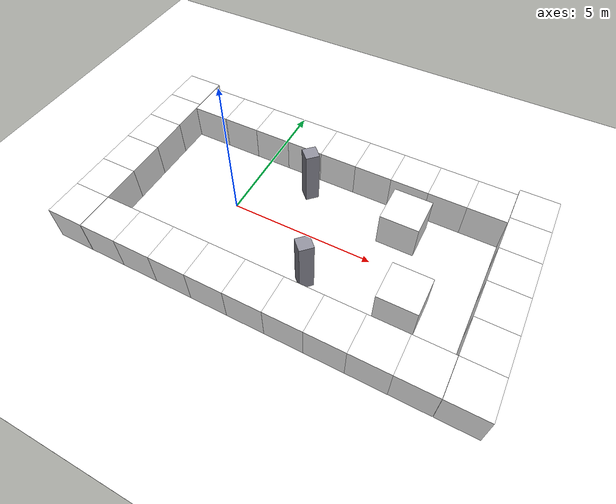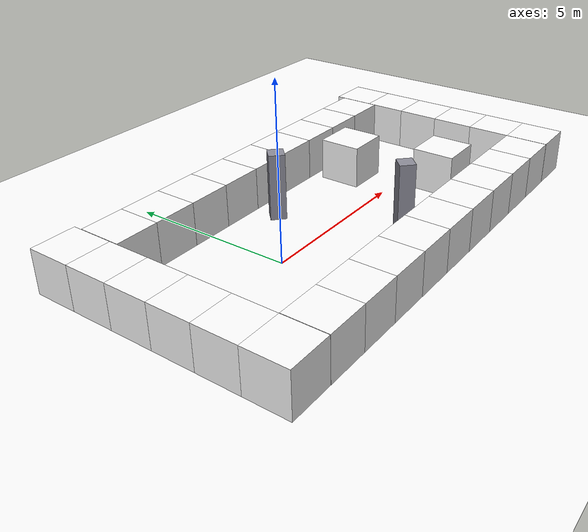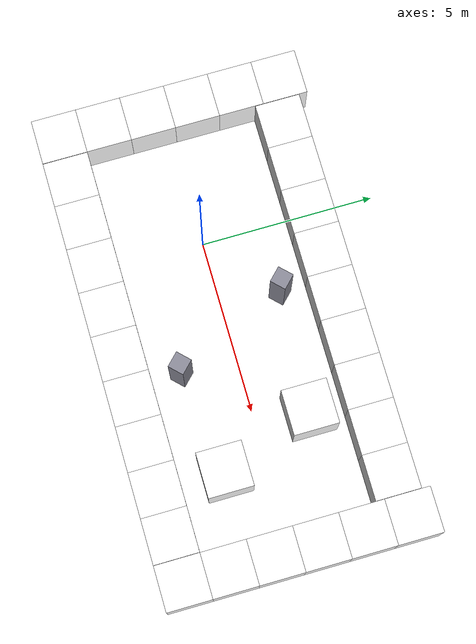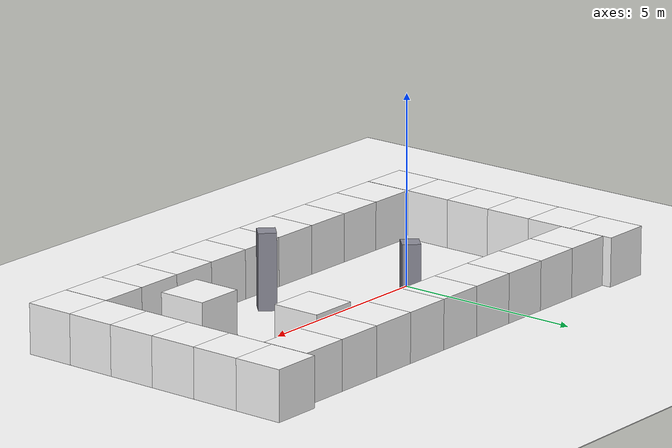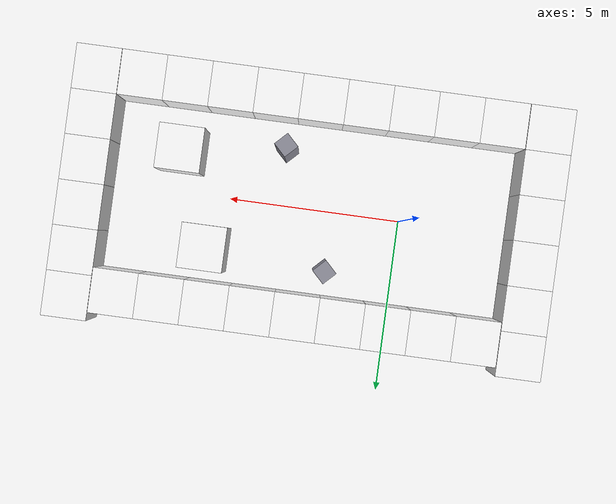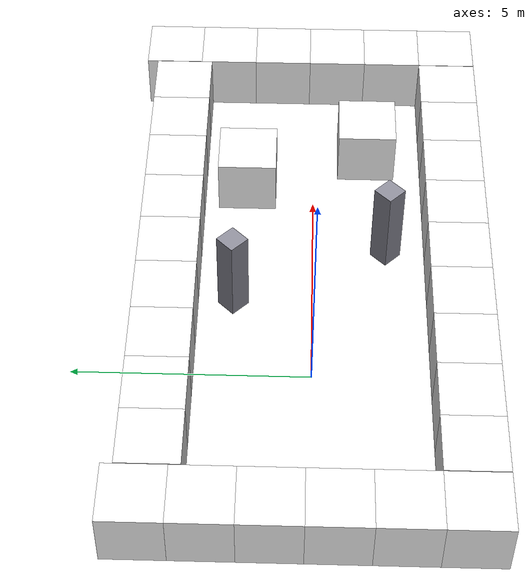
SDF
<?xml version="1.0" ?>
<sdf version="1.9">
  <world name="yard">
    <physics name="1ms" type="ignored">
      <max_step_size>0.001</max_step_size>
      <real_time_factor>1</real_time_factor>
    </physics>
    <plugin filename="gz-sim-physics-system" name="gz::sim::systems::Physics"/>
    <plugin filename="gz-sim-user-commands-system" name="gz::sim::systems::UserCommands"/>
    <plugin filename="gz-sim-scene-broadcaster-system" name="gz::sim::systems::SceneBroadcaster"/>
    <plugin filename="gz-sim-imu-system" name="gz::sim::systems::Imu"/>
    <plugin filename="gz-sim-sensors-system" name="gz::sim::systems::Sensors">
      <render_engine>ogre2</render_engine>
    </plugin>

    <scene>
      <ambient>1 1 1 1</ambient>
      <background>0.3 0.7 0.9 1</background>
      <shadows>0</shadows>
      <grid>1</grid>
    </scene>

    <light name="sun" type="directional">
      <pose>0 0 10 0 0 0</pose>
      <cast_shadows>false</cast_shadows>
      <diffuse>1 1 1 1</diffuse>
      <specular>0.1 0.1 0.1 1</specular>
      <direction>-0.3 0.3 -1</direction>
    </light>

    <!-- open-top sky would hand the stereo pair raw sky (invalid disparity,
         NaN past perception's < 0.1 gate -> dead VIO optimizer); same
         visual-only ceiling as the factory scene -->
    <model name="sky_shell">
      <static>1</static>
      <link name="link">
        <visual name="ceiling">
          <pose>0 0 12 0 0 0</pose>
          <geometry><plane><normal>0 0 -1</normal><size>220 160</size></plane></geometry>
          <material>
            <ambient>0.6 0.6 0.6 1</ambient>
            <diffuse>0.6 0.6 0.6 1</diffuse>
          </material>
        </visual>
      </link>
    </model>

    <model name="ground_plane">
      <static>1</static>
      <pose>0 0 0.002 0 0 0</pose>
      <link name="link">
        <collision name="collision">
          <geometry><plane><normal>0 0 1</normal><size>100 100</size></plane></geometry>
          <surface>
            <friction><ode/></friction>
            <bounce/>
            <contact/>
          </surface>
        </collision>
        <!-- Visual floor: depot FLOOR albedo stretched over 40m so stereo
             SLAM finds texture on an otherwise empty ground (same trick as
             robots/lekiwi/lekiwi.sdf). -->
        <visual name="floor_visual">
          <pose>0 0 -0.011 0 0 0</pose>
          <geometry><box><size>40 40 0.02</size></box></geometry>
          <material>
            <diffuse>1 1 1 1</diffuse>
            <specular>0.05 0.05 0.05 1</specular>
            <pbr>
              <metal>
                <albedo_map>file:///tinynav/tool/simulator/gazebo_scene/models/textures/FLOOR_Albedo.png</albedo_map>
                <roughness>0.95</roughness>
                <metalness>0.0</metalness>
              </metal>
            </pbr>
          </material>
        </visual>
      </link>
    </model>
  <model name="anchor_wall_south">
    <static>1</static>
    <link name="c00">
      <pose>-2.500 -3.100 0.644 0 0 0.0000</pose>
      <collision name="col"><geometry><box><size>1.288 1.288 1.288</size></box></geometry></collision>
      <visual name="vis">
        <geometry><box><size>1.288 1.288 1.288</size></box></geometry>
        <material><diffuse>1 1 1 1</diffuse>
          <pbr><metal>
            <albedo_map>file:///tinynav/tool/simulator/gazebo_scene/models/textures/crate_0.png</albedo_map>
            <roughness>0.95</roughness><metalness>0.0</metalness>
          </metal></pbr>
        </material>
      </visual>
    </link>
    <link name="c01">
      <pose>-1.212 -3.100 0.644 0 0 0.0000</pose>
      <collision name="col"><geometry><box><size>1.288 1.288 1.288</size></box></geometry></collision>
      <visual name="vis">
        <geometry><box><size>1.288 1.288 1.288</size></box></geometry>
        <material><diffuse>1 1 1 1</diffuse>
          <pbr><metal>
            <albedo_map>file:///tinynav/tool/simulator/gazebo_scene/models/textures/crate_1.png</albedo_map>
            <roughness>0.95</roughness><metalness>0.0</metalness>
          </metal></pbr>
        </material>
      </visual>
    </link>
    <link name="c02">
      <pose>0.076 -3.100 0.644 0 0 0.0000</pose>
      <collision name="col"><geometry><box><size>1.288 1.288 1.288</size></box></geometry></collision>
      <visual name="vis">
        <geometry><box><size>1.288 1.288 1.288</size></box></geometry>
        <material><diffuse>1 1 1 1</diffuse>
          <pbr><metal>
            <albedo_map>file:///tinynav/tool/simulator/gazebo_scene/models/textures/crate_2.png</albedo_map>
            <roughness>0.95</roughness><metalness>0.0</metalness>
          </metal></pbr>
        </material>
      </visual>
    </link>
    <link name="c03">
      <pose>1.364 -3.100 0.644 0 0 0.0000</pose>
      <collision name="col"><geometry><box><size>1.288 1.288 1.288</size></box></geometry></collision>
      <visual name="vis">
        <geometry><box><size>1.288 1.288 1.288</size></box></geometry>
        <material><diffuse>1 1 1 1</diffuse>
          <pbr><metal>
            <albedo_map>file:///tinynav/tool/simulator/gazebo_scene/models/textures/crate_3.png</albedo_map>
            <roughness>0.95</roughness><metalness>0.0</metalness>
          </metal></pbr>
        </material>
      </visual>
    </link>
    <link name="c04">
      <pose>2.652 -3.100 0.644 0 0 0.0000</pose>
      <collision name="col"><geometry><box><size>1.288 1.288 1.288</size></box></geometry></collision>
      <visual name="vis">
        <geometry><box><size>1.288 1.288 1.288</size></box></geometry>
        <material><diffuse>1 1 1 1</diffuse>
          <pbr><metal>
            <albedo_map>file:///tinynav/tool/simulator/gazebo_scene/models/textures/crate_4.png</albedo_map>
            <roughness>0.95</roughness><metalness>0.0</metalness>
          </metal></pbr>
        </material>
      </visual>
    </link>
    <link name="c05">
      <pose>3.940 -3.100 0.644 0 0 0.0000</pose>
      <collision name="col"><geometry><box><size>1.288 1.288 1.288</size></box></geometry></collision>
      <visual name="vis">
        <geometry><box><size>1.288 1.288 1.288</size></box></geometry>
        <material><diffuse>1 1 1 1</diffuse>
          <pbr><metal>
            <albedo_map>file:///tinynav/tool/simulator/gazebo_scene/models/textures/crate_5.png</albedo_map>
            <roughness>0.95</roughness><metalness>0.0</metalness>
          </metal></pbr>
        </material>
      </visual>
    </link>
    <link name="c06">
      <pose>5.228 -3.100 0.644 0 0 0.0000</pose>
      <collision name="col"><geometry><box><size>1.288 1.288 1.288</size></box></geometry></collision>
      <visual name="vis">
        <geometry><box><size>1.288 1.288 1.288</size></box></geometry>
        <material><diffuse>1 1 1 1</diffuse>
          <pbr><metal>
            <albedo_map>file:///tinynav/tool/simulator/gazebo_scene/models/textures/crate_6.png</albedo_map>
            <roughness>0.95</roughness><metalness>0.0</metalness>
          </metal></pbr>
        </material>
      </visual>
    </link>
    <link name="c07">
      <pose>6.516 -3.100 0.644 0 0 0.0000</pose>
      <collision name="col"><geometry><box><size>1.288 1.288 1.288</size></box></geometry></collision>
      <visual name="vis">
        <geometry><box><size>1.288 1.288 1.288</size></box></geometry>
        <material><diffuse>1 1 1 1</diffuse>
          <pbr><metal>
            <albedo_map>file:///tinynav/tool/simulator/gazebo_scene/models/textures/crate_7.png</albedo_map>
            <roughness>0.95</roughness><metalness>0.0</metalness>
          </metal></pbr>
        </material>
      </visual>
    </link>
    <link name="c08">
      <pose>7.804 -3.100 0.644 0 0 0.0000</pose>
      <collision name="col"><geometry><box><size>1.288 1.288 1.288</size></box></geometry></collision>
      <visual name="vis">
        <geometry><box><size>1.288 1.288 1.288</size></box></geometry>
        <material><diffuse>1 1 1 1</diffuse>
          <pbr><metal>
            <albedo_map>file:///tinynav/tool/simulator/gazebo_scene/models/textures/crate_0.png</albedo_map>
            <roughness>0.95</roughness><metalness>0.0</metalness>
          </metal></pbr>
        </material>
      </visual>
    </link>
  </model>
  <model name="anchor_wall_north">
    <static>1</static>
    <link name="c00">
      <pose>-2.500 3.100 0.644 0 0 0.0000</pose>
      <collision name="col"><geometry><box><size>1.288 1.288 1.288</size></box></geometry></collision>
      <visual name="vis">
        <geometry><box><size>1.288 1.288 1.288</size></box></geometry>
        <material><diffuse>1 1 1 1</diffuse>
          <pbr><metal>
            <albedo_map>file:///tinynav/tool/simulator/gazebo_scene/models/textures/crate_3.png</albedo_map>
            <roughness>0.95</roughness><metalness>0.0</metalness>
          </metal></pbr>
        </material>
      </visual>
    </link>
    <link name="c01">
      <pose>-1.212 3.100 0.644 0 0 0.0000</pose>
      <collision name="col"><geometry><box><size>1.288 1.288 1.288</size></box></geometry></collision>
      <visual name="vis">
        <geometry><box><size>1.288 1.288 1.288</size></box></geometry>
        <material><diffuse>1 1 1 1</diffuse>
          <pbr><metal>
            <albedo_map>file:///tinynav/tool/simulator/gazebo_scene/models/textures/crate_4.png</albedo_map>
            <roughness>0.95</roughness><metalness>0.0</metalness>
          </metal></pbr>
        </material>
      </visual>
    </link>
    <link name="c02">
      <pose>0.076 3.100 0.644 0 0 0.0000</pose>
      <collision name="col"><geometry><box><size>1.288 1.288 1.288</size></box></geometry></collision>
      <visual name="vis">
        <geometry><box><size>1.288 1.288 1.288</size></box></geometry>
        <material><diffuse>1 1 1 1</diffuse>
          <pbr><metal>
            <albedo_map>file:///tinynav/tool/simulator/gazebo_scene/models/textures/crate_5.png</albedo_map>
            <roughness>0.95</roughness><metalness>0.0</metalness>
          </metal></pbr>
        </material>
      </visual>
    </link>
    <link name="c03">
      <pose>1.364 3.100 0.644 0 0 0.0000</pose>
      <collision name="col"><geometry><box><size>1.288 1.288 1.288</size></box></geometry></collision>
      <visual name="vis">
        <geometry><box><size>1.288 1.288 1.288</size></box></geometry>
        <material><diffuse>1 1 1 1</diffuse>
          <pbr><metal>
            <albedo_map>file:///tinynav/tool/simulator/gazebo_scene/models/textures/crate_6.png</albedo_map>
            <roughness>0.95</roughness><metalness>0.0</metalness>
          </metal></pbr>
        </material>
      </visual>
    </link>
    <link name="c04">
      <pose>2.652 3.100 0.644 0 0 0.0000</pose>
      <collision name="col"><geometry><box><size>1.288 1.288 1.288</size></box></geometry></collision>
      <visual name="vis">
        <geometry><box><size>1.288 1.288 1.288</size></box></geometry>
        <material><diffuse>1 1 1 1</diffuse>
          <pbr><metal>
            <albedo_map>file:///tinynav/tool/simulator/gazebo_scene/models/textures/crate_7.png</albedo_map>
            <roughness>0.95</roughness><metalness>0.0</metalness>
          </metal></pbr>
        </material>
      </visual>
    </link>
    <link name="c05">
      <pose>3.940 3.100 0.644 0 0 0.0000</pose>
      <collision name="col"><geometry><box><size>1.288 1.288 1.288</size></box></geometry></collision>
      <visual name="vis">
        <geometry><box><size>1.288 1.288 1.288</size></box></geometry>
        <material><diffuse>1 1 1 1</diffuse>
          <pbr><metal>
            <albedo_map>file:///tinynav/tool/simulator/gazebo_scene/models/textures/crate_0.png</albedo_map>
            <roughness>0.95</roughness><metalness>0.0</metalness>
          </metal></pbr>
        </material>
      </visual>
    </link>
    <link name="c06">
      <pose>5.228 3.100 0.644 0 0 0.0000</pose>
      <collision name="col"><geometry><box><size>1.288 1.288 1.288</size></box></geometry></collision>
      <visual name="vis">
        <geometry><box><size>1.288 1.288 1.288</size></box></geometry>
        <material><diffuse>1 1 1 1</diffuse>
          <pbr><metal>
            <albedo_map>file:///tinynav/tool/simulator/gazebo_scene/models/textures/crate_1.png</albedo_map>
            <roughness>0.95</roughness><metalness>0.0</metalness>
          </metal></pbr>
        </material>
      </visual>
    </link>
    <link name="c07">
      <pose>6.516 3.100 0.644 0 0 0.0000</pose>
      <collision name="col"><geometry><box><size>1.288 1.288 1.288</size></box></geometry></collision>
      <visual name="vis">
        <geometry><box><size>1.288 1.288 1.288</size></box></geometry>
        <material><diffuse>1 1 1 1</diffuse>
          <pbr><metal>
            <albedo_map>file:///tinynav/tool/simulator/gazebo_scene/models/textures/crate_2.png</albedo_map>
            <roughness>0.95</roughness><metalness>0.0</metalness>
          </metal></pbr>
        </material>
      </visual>
    </link>
    <link name="c08">
      <pose>7.804 3.100 0.644 0 0 0.0000</pose>
      <collision name="col"><geometry><box><size>1.288 1.288 1.288</size></box></geometry></collision>
      <visual name="vis">
        <geometry><box><size>1.288 1.288 1.288</size></box></geometry>
        <material><diffuse>1 1 1 1</diffuse>
          <pbr><metal>
            <albedo_map>file:///tinynav/tool/simulator/gazebo_scene/models/textures/crate_3.png</albedo_map>
            <roughness>0.95</roughness><metalness>0.0</metalness>
          </metal></pbr>
        </material>
      </visual>
    </link>
  </model>
  <model name="anchor_wall_east">
    <static>1</static>
    <link name="c00">
      <pose>9.100 -3.100 0.644 0 0 1.5708</pose>
      <collision name="col"><geometry><box><size>1.288 1.288 1.288</size></box></geometry></collision>
      <visual name="vis">
        <geometry><box><size>1.288 1.288 1.288</size></box></geometry>
        <material><diffuse>1 1 1 1</diffuse>
          <pbr><metal>
            <albedo_map>file:///tinynav/tool/simulator/gazebo_scene/models/textures/crate_5.png</albedo_map>
            <roughness>0.95</roughness><metalness>0.0</metalness>
          </metal></pbr>
        </material>
      </visual>
    </link>
    <link name="c01">
      <pose>9.100 -1.812 0.644 0 0 1.5708</pose>
      <collision name="col"><geometry><box><size>1.288 1.288 1.288</size></box></geometry></collision>
      <visual name="vis">
        <geometry><box><size>1.288 1.288 1.288</size></box></geometry>
        <material><diffuse>1 1 1 1</diffuse>
          <pbr><metal>
            <albedo_map>file:///tinynav/tool/simulator/gazebo_scene/models/textures/crate_6.png</albedo_map>
            <roughness>0.95</roughness><metalness>0.0</metalness>
          </metal></pbr>
        </material>
      </visual>
    </link>
    <link name="c02">
      <pose>9.100 -0.524 0.644 0 0 1.5708</pose>
      <collision name="col"><geometry><box><size>1.288 1.288 1.288</size></box></geometry></collision>
      <visual name="vis">
        <geometry><box><size>1.288 1.288 1.288</size></box></geometry>
        <material><diffuse>1 1 1 1</diffuse>
          <pbr><metal>
            <albedo_map>file:///tinynav/tool/simulator/gazebo_scene/models/textures/crate_7.png</albedo_map>
            <roughness>0.95</roughness><metalness>0.0</metalness>
          </metal></pbr>
        </material>
      </visual>
    </link>
    <link name="c03">
      <pose>9.100 0.764 0.644 0 0 1.5708</pose>
      <collision name="col"><geometry><box><size>1.288 1.288 1.288</size></box></geometry></collision>
      <visual name="vis">
        <geometry><box><size>1.288 1.288 1.288</size></box></geometry>
        <material><diffuse>1 1 1 1</diffuse>
          <pbr><metal>
            <albedo_map>file:///tinynav/tool/simulator/gazebo_scene/models/textures/crate_0.png</albedo_map>
            <roughness>0.95</roughness><metalness>0.0</metalness>
          </metal></pbr>
        </material>
      </visual>
    </link>
    <link name="c04">
      <pose>9.100 2.052 0.644 0 0 1.5708</pose>
      <collision name="col"><geometry><box><size>1.288 1.288 1.288</size></box></geometry></collision>
      <visual name="vis">
        <geometry><box><size>1.288 1.288 1.288</size></box></geometry>
        <material><diffuse>1 1 1 1</diffuse>
          <pbr><metal>
            <albedo_map>file:///tinynav/tool/simulator/gazebo_scene/models/textures/crate_1.png</albedo_map>
            <roughness>0.95</roughness><metalness>0.0</metalness>
          </metal></pbr>
        </material>
      </visual>
    </link>
    <link name="c05">
      <pose>9.100 3.340 0.644 0 0 1.5708</pose>
      <collision name="col"><geometry><box><size>1.288 1.288 1.288</size></box></geometry></collision>
      <visual name="vis">
        <geometry><box><size>1.288 1.288 1.288</size></box></geometry>
        <material><diffuse>1 1 1 1</diffuse>
          <pbr><metal>
            <albedo_map>file:///tinynav/tool/simulator/gazebo_scene/models/textures/crate_2.png</albedo_map>
            <roughness>0.95</roughness><metalness>0.0</metalness>
          </metal></pbr>
        </material>
      </visual>
    </link>
  </model>
  <model name="anchor_wall_west">
    <static>1</static>
    <link name="c00">
      <pose>-3.800 -3.100 0.644 0 0 1.5708</pose>
      <collision name="col"><geometry><box><size>1.288 1.288 1.288</size></box></geometry></collision>
      <visual name="vis">
        <geometry><box><size>1.288 1.288 1.288</size></box></geometry>
        <material><diffuse>1 1 1 1</diffuse>
          <pbr><metal>
            <albedo_map>file:///tinynav/tool/simulator/gazebo_scene/models/textures/crate_1.png</albedo_map>
            <roughness>0.95</roughness><metalness>0.0</metalness>
          </metal></pbr>
        </material>
      </visual>
    </link>
    <link name="c01">
      <pose>-3.800 -1.812 0.644 0 0 1.5708</pose>
      <collision name="col"><geometry><box><size>1.288 1.288 1.288</size></box></geometry></collision>
      <visual name="vis">
        <geometry><box><size>1.288 1.288 1.288</size></box></geometry>
        <material><diffuse>1 1 1 1</diffuse>
          <pbr><metal>
            <albedo_map>file:///tinynav/tool/simulator/gazebo_scene/models/textures/crate_2.png</albedo_map>
            <roughness>0.95</roughness><metalness>0.0</metalness>
          </metal></pbr>
        </material>
      </visual>
    </link>
    <link name="c02">
      <pose>-3.800 -0.524 0.644 0 0 1.5708</pose>
      <collision name="col"><geometry><box><size>1.288 1.288 1.288</size></box></geometry></collision>
      <visual name="vis">
        <geometry><box><size>1.288 1.288 1.288</size></box></geometry>
        <material><diffuse>1 1 1 1</diffuse>
          <pbr><metal>
            <albedo_map>file:///tinynav/tool/simulator/gazebo_scene/models/textures/crate_3.png</albedo_map>
            <roughness>0.95</roughness><metalness>0.0</metalness>
          </metal></pbr>
        </material>
      </visual>
    </link>
    <link name="c03">
      <pose>-3.800 0.764 0.644 0 0 1.5708</pose>
      <collision name="col"><geometry><box><size>1.288 1.288 1.288</size></box></geometry></collision>
      <visual name="vis">
        <geometry><box><size>1.288 1.288 1.288</size></box></geometry>
        <material><diffuse>1 1 1 1</diffuse>
          <pbr><metal>
            <albedo_map>file:///tinynav/tool/simulator/gazebo_scene/models/textures/crate_4.png</albedo_map>
            <roughness>0.95</roughness><metalness>0.0</metalness>
          </metal></pbr>
        </material>
      </visual>
    </link>
    <link name="c04">
      <pose>-3.800 2.052 0.644 0 0 1.5708</pose>
      <collision name="col"><geometry><box><size>1.288 1.288 1.288</size></box></geometry></collision>
      <visual name="vis">
        <geometry><box><size>1.288 1.288 1.288</size></box></geometry>
        <material><diffuse>1 1 1 1</diffuse>
          <pbr><metal>
            <albedo_map>file:///tinynav/tool/simulator/gazebo_scene/models/textures/crate_5.png</albedo_map>
            <roughness>0.95</roughness><metalness>0.0</metalness>
          </metal></pbr>
        </material>
      </visual>
    </link>
    <link name="c05">
      <pose>-3.800 3.340 0.644 0 0 1.5708</pose>
      <collision name="col"><geometry><box><size>1.288 1.288 1.288</size></box></geometry></collision>
      <visual name="vis">
        <geometry><box><size>1.288 1.288 1.288</size></box></geometry>
        <material><diffuse>1 1 1 1</diffuse>
          <pbr><metal>
            <albedo_map>file:///tinynav/tool/simulator/gazebo_scene/models/textures/crate_6.png</albedo_map>
            <roughness>0.95</roughness><metalness>0.0</metalness>
          </metal></pbr>
        </material>
      </visual>
    </link>
  </model>
  <model name="anchor_pillars">
    <static>1</static>
    <link name="p0">
      <pose>3.5 -1.6 1.0 0 0 0.7854</pose>
      <collision name="col"><geometry><box><size>0.465 0.465 2.0</size></box></geometry></collision>
      <visual name="vis">
        <geometry><box><size>0.465 0.465 2.0</size></box></geometry>
        <material><ambient>0.55 0.55 0.6 1</ambient><diffuse>0.55 0.55 0.6 1</diffuse></material>
      </visual>
    </link>
    <link name="p1">
      <pose>2.0 1.7 1.0 0 0 0.7854</pose>
      <collision name="col"><geometry><box><size>0.465 0.465 2.0</size></box></geometry></collision>
      <visual name="vis">
        <geometry><box><size>0.465 0.465 2.0</size></box></geometry>
        <material><ambient>0.55 0.55 0.6 1</ambient><diffuse>0.55 0.55 0.6 1</diffuse></material>
      </visual>
    </link>
  </model>
  <model name="anchor_loose_crates">
    <static>1</static>
    <link name="loose0">
      <pose>5.500 1.500 0.644 0 0 0.0000</pose>
      <collision name="col"><geometry><box><size>1.288 1.288 1.288</size></box></geometry></collision>
      <visual name="vis">
        <geometry><box><size>1.288 1.288 1.288</size></box></geometry>
        <material><diffuse>1 1 1 1</diffuse>
          <pbr><metal>
            <albedo_map>file:///tinynav/tool/simulator/gazebo_scene/models/textures/crate_2.png</albedo_map>
            <roughness>0.95</roughness><metalness>0.0</metalness>
          </metal></pbr>
        </material>
      </visual>
    </link>
    <link name="loose1">
      <pose>6.500 -1.200 0.644 0 0 0.0000</pose>
      <collision name="col"><geometry><box><size>1.288 1.288 1.288</size></box></geometry></collision>
      <visual name="vis">
        <geometry><box><size>1.288 1.288 1.288</size></box></geometry>
        <material><diffuse>1 1 1 1</diffuse>
          <pbr><metal>
            <albedo_map>file:///tinynav/tool/simulator/gazebo_scene/models/textures/crate_6.png</albedo_map>
            <roughness>0.95</roughness><metalness>0.0</metalness>
          </metal></pbr>
        </material>
      </visual>
    </link>
  </model>
  </world>
</sdf>
